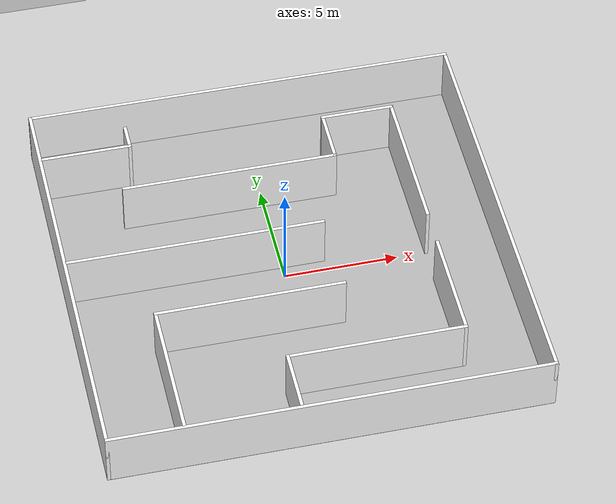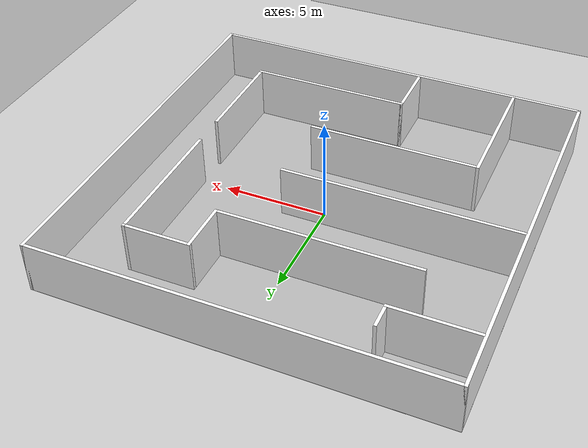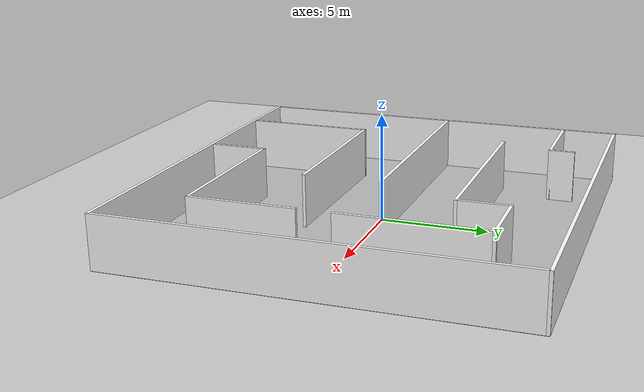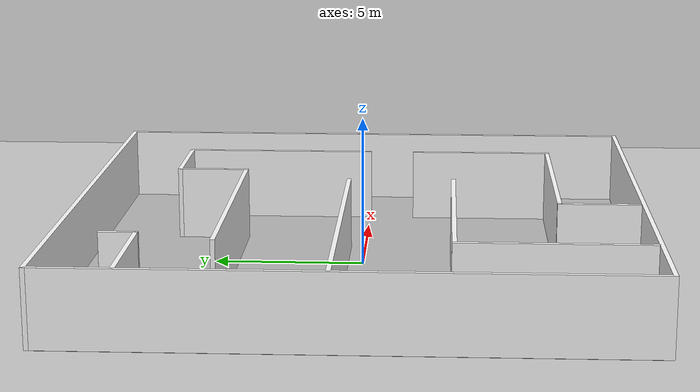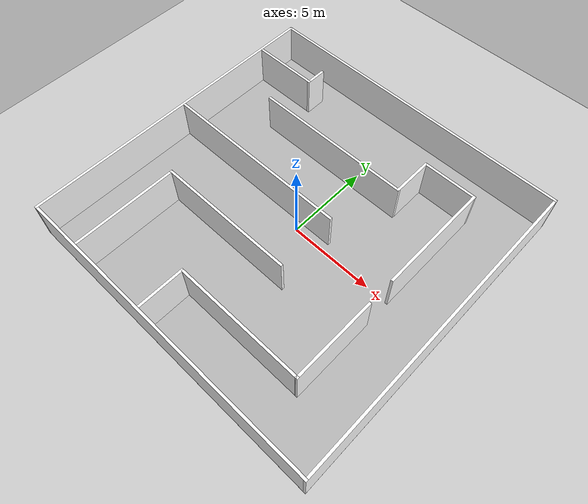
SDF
<sdf version="1.6">
 <world name="default">
  <light name="sun" type="directional">
   <pose>0 0 10 0 -0 0</pose>
   <diffuse>0.8 0.8 0.8 1</diffuse>
   <specular>0.2 0.2 0.2 1</specular>
   <attenuation>
    <range>1000</range>
    <constant>0.9</constant>
    <linear>0.01</linear>
    <quadratic>0.001</quadratic>
   </attenuation>
   <direction>-0.5 0.1 -0.9</direction>
  </light>
  <model name="ground_plane">
   <static>1</static>
   <link name="link">
    <collision name="collision">
     <geometry><plane><normal>0 0 1</normal><size>100 100</size></plane></geometry>
     <surface><friction><ode><mu>100</mu><mu2>50</mu2></ode></friction></surface>
    </collision>
    <visual name="visual">
     <cast_shadows>0</cast_shadows>
     <geometry><plane><normal>0 0 1</normal><size>100 100</size></plane></geometry>
     <material>
      <script><uri>file://media/materials/scripts/gazebo.material</uri><name>Gazebo/Gray</name></script>
     </material>
    </visual>
   </link>
  </model>
  <gravity>0 0 -9.8</gravity>
  <magnetic_field>6e-06 2.3e-05 -4.2e-05</magnetic_field>
  <atmosphere type="adiabatic"/>
  <physics name="default_physics" default="0" type="ode">
   <max_step_size>0.001</max_step_size>
   <real_time_factor>1</real_time_factor>
   <real_time_update_rate>1000</real_time_update_rate>
  </physics>
  <scene><ambient>0.4 0.4 0.4 1</ambient><background>0.7 0.7 0.7 1</background><shadows>1</shadows></scene>
  <audio><device>default</device></audio>
  <spherical_coordinates>
   <surface_model>EARTH_WGS84</surface_model>
   <latitude_deg>0</latitude_deg>
   <longitude_deg>0</longitude_deg>
   <elevation>0</elevation>
   <heading_deg>0</heading_deg>
  </spherical_coordinates>
  <model name="Office_Walls">
   <pose>0.002221 0.034433 0 0 -0 0</pose>
   <link name="Wall_0">
    <collision name="Wall_0_Collision">
     <geometry><box><size>19 0.15 2.5</size></box></geometry>
     <pose>0 0 1.25 0 -0 0</pose>
    </collision>
    <visual name="Wall_0_Visual">
     <pose>0 0 1.25 0 -0 0</pose>
     <geometry><box><size>19 0.15 2.5</size></box></geometry>
     <material>
      <script>
       <uri>model://Office_Walls/materials/scripts</uri>
       <uri>model://Office_Walls/materials/textures</uri>
       <name>outside_wallMat/Diffuse</name>
      </script>
      <ambient>1 1 1 1</ambient>
     </material>
     <meta><layer>0</layer></meta>
    </visual>
    <pose>0 9.3 0 0 -0 0</pose>
   </link>
   <link name="Wall_10">
    <collision name="Wall_10_Collision">
     <geometry><box><size>8.25 0.15 2.5</size></box></geometry>
     <pose>0 0 1.25 0 -0 0</pose>
    </collision>
    <visual name="Wall_10_Visual">
     <pose>0 0 1.25 0 -0 0</pose>
     <geometry><box><size>8.25 0.15 2.5</size></box></geometry>
     <material>
      <script>
       <uri>model://Office_Walls/materials/scripts</uri>
       <uri>model://Office_Walls/materials/textures</uri>
       <name>wallMat/Diffuse</name>
      </script>
      <ambient>1 1 1 1</ambient>
     </material>
     <meta><layer>0</layer></meta>
    </visual>
    <pose>-2.15179 -3.08037 0 0 -0 0</pose>
   </link>
   <link name="Wall_12">
    <collision name="Wall_12_Collision">
     <geometry><box><size>2.75 0.15 2.5</size></box></geometry>
     <pose>0 0 1.25 0 -0 0</pose>
    </collision>
    <visual name="Wall_12_Visual">
     <pose>0 0 1.25 0 -0 0</pose>
     <geometry><box><size>2.75 0.15 2.5</size></box></geometry>
     <material>
      <script>
       <uri>model://Office_Walls/materials/scripts</uri>
       <uri>model://Office_Walls/materials/textures</uri>
       <name>wallMat/Diffuse</name>
      </script>
      <ambient>1 1 1 1</ambient>
     </material>
     <meta><layer>0</layer></meta>
    </visual>
    <pose>-1.31194 -7.84519 0 0 -0 1.5708</pose>
   </link>
   <link name="Wall_13">
    <collision name="Wall_13_Collision">
     <geometry><box><size>7.75 0.15 2.5</size></box></geometry>
     <pose>0 0 1.25 0 -0 0</pose>
    </collision>
    <visual name="Wall_13_Visual">
     <pose>0 0 1.25 0 -0 0</pose>
     <geometry><box><size>7.75 0.15 2.5</size></box></geometry>
     <material>
      <script>
       <uri>model://Office_Walls/materials/scripts</uri>
       <uri>model://Office_Walls/materials/textures</uri>
       <name>wallMat/Diffuse</name>
      </script>
      <ambient>1 1 1 1</ambient>
     </material>
     <meta><layer>0</layer></meta>
    </visual>
    <pose>2.48806 -6.54519 0 0 -0 0</pose>
   </link>
   <link name="Wall_14">
    <collision name="Wall_14_Collision">
     <geometry><box><size>5 0.15 2.5</size></box></geometry>
     <pose>0 0 1.25 0 -0 0</pose>
    </collision>
    <visual name="Wall_14_Visual">
     <pose>0 0 1.25 0 -0 0</pose>
     <geometry><box><size>5 0.15 2.5</size></box></geometry>
     <material>
      <script>
       <uri>model://Office_Walls/materials/scripts</uri>
       <uri>model://Office_Walls/materials/textures</uri>
       <name>wallMat/Diffuse</name>
      </script>
      <ambient>1 1 1 1</ambient>
     </material>
     <meta><layer>0</layer></meta>
    </visual>
    <pose>6.28806 -4.12019 0 0 -0 1.5708</pose>
   </link>
   <link name="Wall_16">
    <collision name="Wall_16_Collision">
     <geometry><box><size>6.75 0.15 2.5</size></box></geometry>
     <pose>0 0 1.25 0 -0 0</pose>
    </collision>
    <visual name="Wall_16_Visual">
     <pose>0 0 1.25 0 -0 0</pose>
     <geometry><box><size>6.75 0.15 2.5</size></box></geometry>
     <material>
      <script>
       <uri>model://Office_Walls/materials/scripts</uri>
       <uri>model://Office_Walls/materials/textures</uri>
       <name>wallMat/Diffuse</name>
      </script>
      <ambient>1 1 1 1</ambient>
     </material>
     <meta><layer>0</layer></meta>
    </visual>
    <pose>6.28667 3.30129 0 0 -0 1.5708</pose>
   </link>
   <link name="Wall_17">
    <collision name="Wall_17_Collision">
     <geometry><box><size>3.25 0.15 2.5</size></box></geometry>
     <pose>0 0 1.25 0 -0 0</pose>
    </collision>
    <visual name="Wall_17_Visual">
     <pose>0 0 1.25 0 -0 0</pose>
     <geometry><box><size>3.25 0.15 2.5</size></box></geometry>
     <material>
      <script>
       <uri>model://Office_Walls/materials/scripts</uri>
       <uri>model://Office_Walls/materials/textures</uri>
       <name>wallMat/Diffuse</name>
      </script>
      <ambient>1 1 1 1</ambient>
     </material>
     <meta><layer>0</layer></meta>
    </visual>
    <pose>4.73667 6.60129 0 0 -0 3.14159</pose>
   </link>
   <link name="Wall_18">
    <collision name="Wall_18_Collision">
     <geometry><box><size>2.5 0.15 2.5</size></box></geometry>
     <pose>0 0 1.25 0 -0 0</pose>
    </collision>
    <visual name="Wall_18_Visual">
     <pose>0 0 1.25 0 -0 0</pose>
     <geometry><box><size>2.5 0.15 2.5</size></box></geometry>
     <material>
      <script>
       <uri>model://Office_Walls/materials/scripts</uri>
       <uri>model://Office_Walls/materials/textures</uri>
       <name>wallMat/Diffuse</name>
      </script>
      <ambient>1 1 1 1</ambient>
     </material>
     <meta><layer>0</layer></meta>
    </visual>
    <pose>3.18667 5.42629 0 0 -0 -1.5708</pose>
   </link>
   <link name="Wall_19">
    <collision name="Wall_19_Collision">
     <geometry><box><size>9.5 0.15 2.5</size></box></geometry>
     <pose>0 0 1.25 0 -0 0</pose>
    </collision>
    <visual name="Wall_19_Visual">
     <pose>0 0 1.25 0 -0 0</pose>
     <geometry><box><size>9.5 0.15 2.5</size></box></geometry>
     <material>
      <script>
       <uri>model://Office_Walls/materials/scripts</uri>
       <uri>model://Office_Walls/materials/textures</uri>
       <name>wallMat/Diffuse</name>
      </script>
      <ambient>1 1 1 1</ambient>
     </material>
     <meta><layer>0</layer></meta>
    </visual>
    <pose>-1.48833 4.25129 0 0 -0 3.14159</pose>
   </link>
   <link name="Wall_21">
    <collision name="Wall_21_Collision">
     <geometry><box><size>11.25 0.15 2.5</size></box></geometry>
     <pose>0 0 1.25 0 -0 0</pose>
    </collision>
    <visual name="Wall_21_Visual">
     <pose>0 0 1.25 0 -0 0</pose>
     <geometry><box><size>11.25 0.15 2.5</size></box></geometry>
     <material>
      <script>
       <uri>model://Office_Walls/materials/scripts</uri>
       <uri>model://Office_Walls/materials/textures</uri>
       <name>wallMat/Diffuse</name>
      </script>
      <ambient>1 1 1 1</ambient>
     </material>
     <meta><layer>0</layer></meta>
    </visual>
    <pose>-3.74752 0.528973 0 0 -0 0</pose>
   </link>
   <link name="Wall_23">
    <collision name="Wall_23_Collision">
     <geometry><box><size>4 0.15 2.5</size></box></geometry>
     <pose>0 0 1.25 0 -0 0</pose>
    </collision>
    <visual name="Wall_23_Visual">
     <pose>0 0 1.25 0 -0 0</pose>
     <geometry><box><size>4 0.15 2.5</size></box></geometry>
     <material>
      <script>
       <uri>model://Office_Walls/materials/scripts</uri>
       <uri>model://Office_Walls/materials/textures</uri>
       <name>wallMat/Diffuse</name>
      </script>
      <ambient>1 1 1 1</ambient>
     </material>
     <meta><layer>0</layer></meta>
    </visual>
    <pose>-7.37252 6.72044 0 0 -0 0</pose>
   </link>
   <link name="Wall_24">
    <collision name="Wall_24_Collision">
     <geometry><box><size>1.25 0.15 2.5</size></box></geometry>
     <pose>0 0 1.25 0 -0 0</pose>
    </collision>
    <visual name="Wall_24_Visual">
     <pose>0 0 1.25 0 -0 0</pose>
     <geometry><box><size>1.25 0.15 2.5</size></box></geometry>
     <material>
      <script>
       <uri>model://Office_Walls/materials/scripts</uri>
       <uri>model://Office_Walls/materials/textures</uri>
       <name>wallMat/Diffuse</name>
      </script>
      <ambient>1 1 1 1</ambient>
     </material>
     <meta><layer>0</layer></meta>
    </visual>
    <pose>-5.44752 7.27043 0 0 -0 1.5708</pose>
   </link>
   <link name="Wall_3">
    <collision name="Wall_3_Collision">
     <geometry><box><size>18.75 0.15 2.5</size></box></geometry>
     <pose>0 0 1.25 0 -0 0</pose>
    </collision>
    <visual name="Wall_3_Visual">
     <pose>0 0 1.25 0 -0 0</pose>
     <geometry><box><size>18.75 0.15 2.5</size></box></geometry>
     <material>
      <script>
       <uri>model://Office_Walls/materials/scripts</uri>
       <uri>model://Office_Walls/materials/textures</uri>
       <name>outside_wallMat/Diffuse</name>
      </script>
      <ambient>1 1 1 1</ambient>
     </material>
     <meta><layer>0</layer></meta>
    </visual>
    <pose>-9.425 -0 0 0 -0 -1.5708</pose>
   </link>
   <link name="Wall_4">
    <collision name="Wall_4_Collision">
     <geometry><box><size>19 0.15 2.5</size></box></geometry>
     <pose>0 0 1.25 0 -0 0</pose>
    </collision>
    <visual name="Wall_4_Visual">
     <pose>0 0 1.25 0 -0 0</pose>
     <geometry><box><size>19 0.15 2.5</size></box></geometry>
     <material>
      <script>
       <uri>model://Office_Walls/materials/scripts</uri>
       <uri>model://Office_Walls/materials/textures</uri>
       <name>outside_wallMat/Diffuse</name>
      </script>
      <ambient>1 1 1 1</ambient>
     </material>
     <meta><layer>0</layer></meta>
    </visual>
    <pose>0 -9.3 0 0 -0 0</pose>
   </link>
   <link name="Wall_5">
    <collision name="Wall_5_Collision">
     <geometry><box><size>18.75 0.15 2.5</size></box></geometry>
     <pose>0 0 1.25 0 -0 0</pose>
    </collision>
    <visual name="Wall_5_Visual">
     <pose>0 0 1.25 0 -0 0</pose>
     <geometry><box><size>18.75 0.15 2.5</size></box></geometry>
     <material>
      <script>
       <uri>model://Office_Walls/materials/scripts</uri>
       <uri>model://Office_Walls/materials/textures</uri>
       <name>outside_wallMat/Diffuse</name>
      </script>
      <ambient>1 1 1 1</ambient>
     </material>
     <meta><layer>0</layer></meta>
    </visual>
    <pose>9.425 -0 0 0 -0 1.5708</pose>
   </link>
   <link name="Wall_9">
    <collision name="Wall_9_Collision">
     <geometry><box><size>6.25 0.15 2.5</size></box></geometry>
     <pose>0 0 1.25 0 -0 0</pose>
    </collision>
    <visual name="Wall_9_Visual">
     <pose>0 0 1.25 0 -0 0</pose>
     <geometry><box><size>6.25 0.15 2.5</size></box></geometry>
     <material>
      <script>
       <uri>model://Office_Walls/materials/scripts</uri>
       <uri>model://Office_Walls/materials/textures</uri>
       <name>wallMat/Diffuse</name>
      </script>
      <ambient>1 1 1 1</ambient>
     </material>
     <meta><layer>0</layer></meta>
    </visual>
    <pose>-6.20179 -6.13037 0 0 -0 1.5708</pose>
   </link>
   <static>1</static>
  </model>
  <model name="Office_Floor">
   <static>1</static>
   <link name="link">
    <collision name="collision">
     <geometry><box><size>19 18.75 0.01</size></box></geometry>
     <surface><friction><ode><mu>100</mu><mu2>50</mu2></ode></friction></surface>
    </collision>
    <visual name="visual">
     <cast_shadows>0</cast_shadows>
     <geometry><box><size>19 18.75 0.01</size></box></geometry>
     <material>
      <script>
       <uri>model://Office_Floor/materials/scripts</uri>
       <uri>model://Office_Floor/materials/textures</uri>
       <name>floorMat/Diffuse</name>
      </script>
     </material>
    </visual>
   </link>
   <pose>0.002359 0.034525 0 0 -0 0</pose>
  </model>
 </world>
</sdf>
